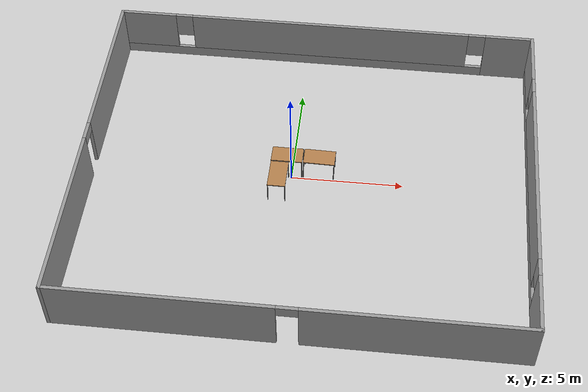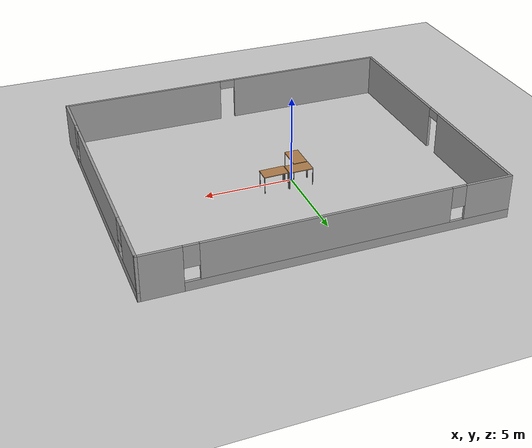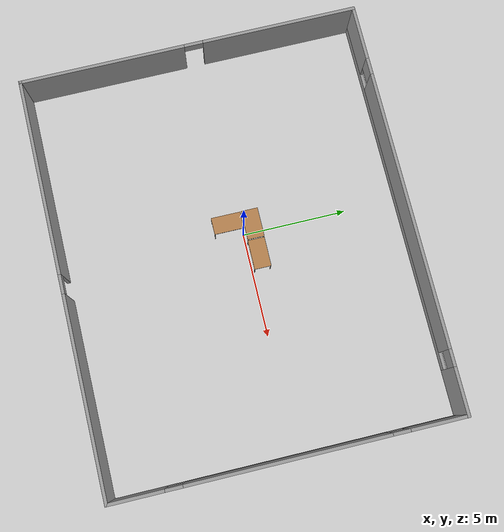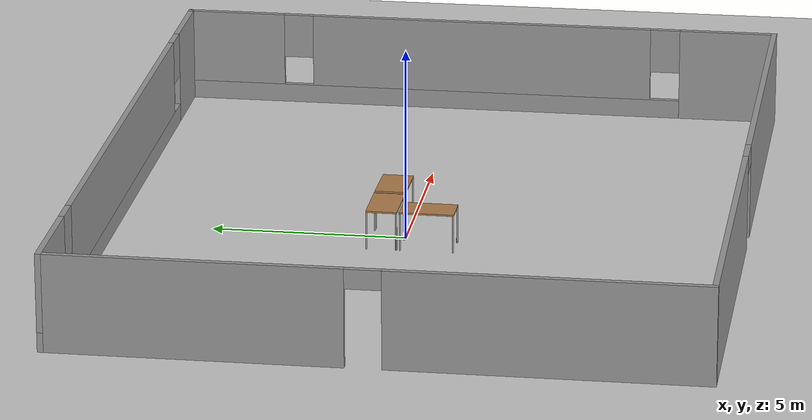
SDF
<sdf version="1.6">
 <world name="default">
  <light name="sun" type="directional">
   <pose>0 0 10 0 -0 0</pose>
   <diffuse>0.8 0.8 0.8 1</diffuse>
   <specular>0.1 0.1 0.1 1</specular>
   <attenuation>
    <range>1000</range>
    <constant>0.9</constant>
    <linear>0.01</linear>
    <quadratic>0.001</quadratic>
   </attenuation>
   <direction>-0.5 0.5 -1</direction>
  </light>
  <model name="ground_plane">
   <static>1</static>
   <link name="link">
    <collision name="collision">
     <geometry><plane><normal>0 0 1</normal><size>100 100</size></plane></geometry>
     <surface><friction><ode><mu>100</mu><mu2>50</mu2></ode></friction></surface>
    </collision>
    <visual name="visual">
     <cast_shadows>0</cast_shadows>
     <geometry><plane><normal>0 0 1</normal><size>100 100</size></plane></geometry>
     <material>
      <script><uri>file://media/materials/scripts/gazebo.material</uri><name>Gazebo/Grey</name></script>
     </material>
    </visual>
   </link>
  </model>
  <gravity>0 0 -9.8</gravity>
  <magnetic_field>6e-06 2.3e-05 -4.2e-05</magnetic_field>
  <atmosphere type="adiabatic"/>
  <physics name="default_physics" default="0" type="ode">
   <max_step_size>0.001</max_step_size>
   <real_time_factor>1</real_time_factor>
   <real_time_update_rate>1000</real_time_update_rate>
  </physics>
  <scene><ambient>0.4 0.4 0.4 1</ambient><background>0.7 0.7 0.7 1</background><shadows>1</shadows></scene>
  <spherical_coordinates>
   <surface_model>EARTH_WGS84</surface_model>
   <latitude_deg>0</latitude_deg>
   <longitude_deg>0</longitude_deg>
   <elevation>0</elevation>
   <heading_deg>0</heading_deg>
  </spherical_coordinates>
  <model name="table">
   <static>0</static>
   <link name="link">
    <collision name="surface">
     <pose>0 0 1 0 -0 0</pose>
     <geometry><box><size>1.5 0.8 0.03</size></box></geometry>
     <surface><friction><ode><mu>0.6</mu><mu2>0.6</mu2></ode></friction></surface>
    </collision>
    <visual name="visual1">
     <pose>0 0 1 0 -0 0</pose>
     <geometry><box><size>1.4 0.8 0.04</size></box></geometry>
     <material>
      <script><uri>file://media/materials/scripts/gazebo.material</uri><name>Gazebo/Wood</name></script>
     </material>
    </visual>
    <collision name="front_left_leg">
     <pose>0.68 0.38 0.5 0 -0 0</pose>
     <geometry><cylinder><radius>0.02</radius><length>1</length></cylinder></geometry>
    </collision>
    <visual name="front_left_leg">
     <pose>0.68 0.38 0.5 0 -0 0</pose>
     <geometry><cylinder><radius>0.02</radius><length>1</length></cylinder></geometry>
     <material>
      <script><uri>file://media/materials/scripts/gazebo.material</uri><name>Gazebo/Grey</name></script>
     </material>
    </visual>
    <collision name="front_right_leg">
     <pose>0.68 -0.38 0.5 0 -0 0</pose>
     <geometry><cylinder><radius>0.02</radius><length>1</length></cylinder></geometry>
    </collision>
    <visual name="front_right_leg">
     <pose>0.68 -0.38 0.5 0 -0 0</pose>
     <geometry><cylinder><radius>0.02</radius><length>1</length></cylinder></geometry>
     <material>
      <script><uri>file://media/materials/scripts/gazebo.material</uri><name>Gazebo/Grey</name></script>
     </material>
    </visual>
    <collision name="back_right_leg">
     <pose>-0.68 -0.38 0.5 0 -0 0</pose>
     <geometry><cylinder><radius>0.02</radius><length>1</length></cylinder></geometry>
    </collision>
    <visual name="back_right_leg">
     <pose>-0.68 -0.38 0.5 0 -0 0</pose>
     <geometry><cylinder><radius>0.02</radius><length>1</length></cylinder></geometry>
     <material>
      <script><uri>file://media/materials/scripts/gazebo.material</uri><name>Gazebo/Grey</name></script>
     </material>
    </visual>
    <collision name="back_left_leg">
     <pose>-0.68 0.38 0.5 0 -0 0</pose>
     <geometry><cylinder><radius>0.02</radius><length>1</length></cylinder></geometry>
    </collision>
    <visual name="back_left_leg">
     <pose>-0.68 0.38 0.5 0 -0 0</pose>
     <geometry><cylinder><radius>0.02</radius><length>1</length></cylinder></geometry>
     <material>
      <script><uri>file://media/materials/scripts/gazebo.material</uri><name>Gazebo/Grey</name></script>
     </material>
    </visual>
    <inertial>
     <inertia><ixx>1</ixx><ixy>0</ixy><ixz>0</ixz><iyy>1</iyy><iyz>0</iyz><izz>1</izz></inertia>
     <mass>1</mass>
    </inertial>
   </link>
   <pose>-0.522772 -0.649382 -7e-06 0 4e-06 -1.57713</pose>
  </model>
  <model name="table_1">
   <static>0</static>
   <link name="link">
    <collision name="surface">
     <pose>0 0 1 0 -0 0</pose>
     <geometry><box><size>1.5 0.8 0.03</size></box></geometry>
     <surface><friction><ode><mu>0.6</mu><mu2>0.6</mu2></ode></friction></surface>
    </collision>
    <visual name="visual1">
     <pose>0 0 1 0 -0 0</pose>
     <geometry><box><size>1.4 0.8 0.04</size></box></geometry>
     <material>
      <script><uri>file://media/materials/scripts/gazebo.material</uri><name>Gazebo/Wood</name></script>
     </material>
    </visual>
    <collision name="front_left_leg">
     <pose>0.68 0.38 0.5 0 -0 0</pose>
     <geometry><cylinder><radius>0.02</radius><length>1</length></cylinder></geometry>
    </collision>
    <visual name="front_left_leg">
     <pose>0.68 0.38 0.5 0 -0 0</pose>
     <geometry><cylinder><radius>0.02</radius><length>1</length></cylinder></geometry>
     <material>
      <script><uri>file://media/materials/scripts/gazebo.material</uri><name>Gazebo/Grey</name></script>
     </material>
    </visual>
    <collision name="front_right_leg">
     <pose>0.68 -0.38 0.5 0 -0 0</pose>
     <geometry><cylinder><radius>0.02</radius><length>1</length></cylinder></geometry>
    </collision>
    <visual name="front_right_leg">
     <pose>0.68 -0.38 0.5 0 -0 0</pose>
     <geometry><cylinder><radius>0.02</radius><length>1</length></cylinder></geometry>
     <material>
      <script><uri>file://media/materials/scripts/gazebo.material</uri><name>Gazebo/Grey</name></script>
     </material>
    </visual>
    <collision name="back_right_leg">
     <pose>-0.68 -0.38 0.5 0 -0 0</pose>
     <geometry><cylinder><radius>0.02</radius><length>1</length></cylinder></geometry>
    </collision>
    <visual name="back_right_leg">
     <pose>-0.68 -0.38 0.5 0 -0 0</pose>
     <geometry><cylinder><radius>0.02</radius><length>1</length></cylinder></geometry>
     <material>
      <script><uri>file://media/materials/scripts/gazebo.material</uri><name>Gazebo/Grey</name></script>
     </material>
    </visual>
    <collision name="back_left_leg">
     <pose>-0.68 0.38 0.5 0 -0 0</pose>
     <geometry><cylinder><radius>0.02</radius><length>1</length></cylinder></geometry>
    </collision>
    <visual name="back_left_leg">
     <pose>-0.68 0.38 0.5 0 -0 0</pose>
     <geometry><cylinder><radius>0.02</radius><length>1</length></cylinder></geometry>
     <material>
      <script><uri>file://media/materials/scripts/gazebo.material</uri><name>Gazebo/Grey</name></script>
     </material>
    </visual>
    <inertial>
     <inertia><ixx>1</ixx><ixy>0</ixy><ixz>0</ixz><iyy>1</iyy><iyz>0</iyz><izz>1</izz></inertia>
     <mass>1</mass>
    </inertial>
   </link>
   <pose>-0.228641 0.500106 -2e-06 -5e-06 -0 -0.004646</pose>
  </model>
  <model name="table_2">
   <static>0</static>
   <link name="link">
    <collision name="surface">
     <pose>0 0 1 0 -0 0</pose>
     <geometry><box><size>1.5 0.8 0.03</size></box></geometry>
     <surface><friction><ode><mu>0.6</mu><mu2>0.6</mu2></ode></friction></surface>
    </collision>
    <visual name="visual1">
     <pose>0 0 1 0 -0 0</pose>
     <geometry><box><size>1.4 0.8 0.04</size></box></geometry>
     <material>
      <script><uri>file://media/materials/scripts/gazebo.material</uri><name>Gazebo/Wood</name></script>
     </material>
    </visual>
    <collision name="front_left_leg">
     <pose>0.68 0.38 0.5 0 -0 0</pose>
     <geometry><cylinder><radius>0.02</radius><length>1</length></cylinder></geometry>
    </collision>
    <visual name="front_left_leg">
     <pose>0.68 0.38 0.5 0 -0 0</pose>
     <geometry><cylinder><radius>0.02</radius><length>1</length></cylinder></geometry>
     <material>
      <script><uri>file://media/materials/scripts/gazebo.material</uri><name>Gazebo/Grey</name></script>
     </material>
    </visual>
    <collision name="front_right_leg">
     <pose>0.68 -0.38 0.5 0 -0 0</pose>
     <geometry><cylinder><radius>0.02</radius><length>1</length></cylinder></geometry>
    </collision>
    <visual name="front_right_leg">
     <pose>0.68 -0.38 0.5 0 -0 0</pose>
     <geometry><cylinder><radius>0.02</radius><length>1</length></cylinder></geometry>
     <material>
      <script><uri>file://media/materials/scripts/gazebo.material</uri><name>Gazebo/Grey</name></script>
     </material>
    </visual>
    <collision name="back_right_leg">
     <pose>-0.68 -0.38 0.5 0 -0 0</pose>
     <geometry><cylinder><radius>0.02</radius><length>1</length></cylinder></geometry>
    </collision>
    <visual name="back_right_leg">
     <pose>-0.68 -0.38 0.5 0 -0 0</pose>
     <geometry><cylinder><radius>0.02</radius><length>1</length></cylinder></geometry>
     <material>
      <script><uri>file://media/materials/scripts/gazebo.material</uri><name>Gazebo/Grey</name></script>
     </material>
    </visual>
    <collision name="back_left_leg">
     <pose>-0.68 0.38 0.5 0 -0 0</pose>
     <geometry><cylinder><radius>0.02</radius><length>1</length></cylinder></geometry>
    </collision>
    <visual name="back_left_leg">
     <pose>-0.68 0.38 0.5 0 -0 0</pose>
     <geometry><cylinder><radius>0.02</radius><length>1</length></cylinder></geometry>
     <material>
      <script><uri>file://media/materials/scripts/gazebo.material</uri><name>Gazebo/Grey</name></script>
     </material>
    </visual>
    <inertial>
     <inertia><ixx>1</ixx><ixy>0</ixy><ixz>0</ixz><iyy>1</iyy><iyz>0</iyz><izz>1</izz></inertia>
     <mass>1</mass>
    </inertial>
   </link>
   <pose>1.20051 0.479194 0.015103 -1.5e-05 0.021584 -0.004644</pose>
  </model>
  <model name="zgrada">
   <pose>0.799763 -0.529069 0 0 -0 0</pose>
   <link name="Wall_10">
    <pose>0 8.05 0 0 -0 3.14159</pose>
    <visual name="Wall_10_Visual_0">
     <pose>-8.74279 0 1.25 0 -0 0</pose>
     <geometry><box><size>2.26443 0.15 2.5</size></box></geometry>
     <material>
      <script><uri>file://media/materials/scripts/gazebo.material</uri><name>Gazebo/Grey</name></script>
      <ambient>1 1 1 1</ambient>
     </material>
    </visual>
    <collision name="Wall_10_Collision_0">
     <geometry><box><size>2.26443 0.15 2.5</size></box></geometry>
     <pose>-8.74279 0 1.25 0 -0 0</pose>
    </collision>
    <visual name="Wall_10_Visual_1">
     <pose>1.13221 0 0.25 0 -0 0</pose>
     <geometry><box><size>17.4856 0.15 0.5</size></box></geometry>
     <material>
      <script><uri>file://media/materials/scripts/gazebo.material</uri><name>Gazebo/Grey</name></script>
      <ambient>1 1 1 1</ambient>
     </material>
    </visual>
    <collision name="Wall_10_Collision_1">
     <geometry><box><size>17.4856 0.15 0.5</size></box></geometry>
     <pose>1.13221 0 0.25 0 -0 0</pose>
    </collision>
    <visual name="Wall_10_Visual_2">
     <pose>-0.207067 0 1.5 0 -0 0</pose>
     <geometry><box><size>13.207 0.15 2</size></box></geometry>
     <material>
      <script><uri>file://media/materials/scripts/gazebo.material</uri><name>Gazebo/Grey</name></script>
      <ambient>1 1 1 1</ambient>
     </material>
    </visual>
    <collision name="Wall_10_Collision_2">
     <geometry><box><size>13.207 0.15 2</size></box></geometry>
     <pose>-0.207067 0 1.5 0 -0 0</pose>
    </collision>
    <visual name="Wall_10_Visual_3">
     <pose>8.53572 0 1.5 0 -0 0</pose>
     <geometry><box><size>2.67856 0.15 2</size></box></geometry>
     <material>
      <script><uri>file://media/materials/scripts/gazebo.material</uri><name>Gazebo/Grey</name></script>
      <ambient>1 1 1 1</ambient>
     </material>
    </visual>
    <collision name="Wall_10_Collision_3">
     <geometry><box><size>2.67856 0.15 2</size></box></geometry>
     <pose>8.53572 0 1.5 0 -0 0</pose>
    </collision>
    <visual name="Wall_10_Visual_4">
     <pose>-7.21057 0 1.9 0 -0 0</pose>
     <geometry><box><size>0.8 0.15 1.2</size></box></geometry>
     <material>
      <script><uri>file://media/materials/scripts/gazebo.material</uri><name>Gazebo/Grey</name></script>
      <ambient>1 1 1 1</ambient>
     </material>
    </visual>
    <collision name="Wall_10_Collision_4">
     <geometry><box><size>0.8 0.15 1.2</size></box></geometry>
     <pose>-7.21057 0 1.9 0 -0 0</pose>
    </collision>
    <visual name="Wall_10_Visual_5">
     <pose>6.79644 0 1.9 0 -0 0</pose>
     <geometry><box><size>0.8 0.15 1.2</size></box></geometry>
     <material>
      <script><uri>file://media/materials/scripts/gazebo.material</uri><name>Gazebo/Grey</name></script>
      <ambient>1 1 1 1</ambient>
     </material>
    </visual>
    <collision name="Wall_10_Collision_5">
     <geometry><box><size>0.8 0.15 1.2</size></box></geometry>
     <pose>6.79644 0 1.9 0 -0 0</pose>
    </collision>
   </link>
   <link name="Wall_6">
    <pose>-9.8 0 0 0 0 -1.5708</pose>
    <visual name="Wall_6_Visual_0">
     <pose>-4.41526 0 1.25 0 -0 0</pose>
     <geometry><box><size>7.41947 0.15 2.5</size></box></geometry>
     <material>
      <script><uri>file://media/materials/scripts/gazebo.material</uri><name>Gazebo/Grey</name></script>
      <ambient>1 1 1 1</ambient>
     </material>
    </visual>
    <collision name="Wall_6_Collision_0">
     <geometry><box><size>7.41947 0.15 2.5</size></box></geometry>
     <pose>-4.41526 0 1.25 0 -0 0</pose>
    </collision>
    <visual name="Wall_6_Visual_1">
     <pose>4.15974 0 1.25 0 -0 0</pose>
     <geometry><box><size>7.93053 0.15 2.5</size></box></geometry>
     <material>
      <script><uri>file://media/materials/scripts/gazebo.material</uri><name>Gazebo/Grey</name></script>
      <ambient>1 1 1 1</ambient>
     </material>
    </visual>
    <collision name="Wall_6_Collision_1">
     <geometry><box><size>7.93053 0.15 2.5</size></box></geometry>
     <pose>4.15974 0 1.25 0 -0 0</pose>
    </collision>
    <visual name="Wall_6_Visual_2">
     <pose>-0.255526 0 2.25 0 -0 0</pose>
     <geometry><box><size>0.9 0.15 0.5</size></box></geometry>
     <material>
      <script><uri>file://media/materials/scripts/gazebo.material</uri><name>Gazebo/Grey</name></script>
      <ambient>1 1 1 1</ambient>
     </material>
    </visual>
    <collision name="Wall_6_Collision_2">
     <geometry><box><size>0.9 0.15 0.5</size></box></geometry>
     <pose>-0.255526 0 2.25 0 -0 0</pose>
    </collision>
   </link>
   <link name="Wall_8">
    <pose>0 -8.05 0 0 -0 0</pose>
    <visual name="Wall_8_Visual_0">
     <pose>-5.16119 0 1.25 0 -0 0</pose>
     <geometry><box><size>9.42761 0.15 2.5</size></box></geometry>
     <material>
      <script><uri>file://media/materials/scripts/gazebo.material</uri><name>Gazebo/Grey</name></script>
      <ambient>1 1 1 1</ambient>
     </material>
    </visual>
    <collision name="Wall_8_Collision_0">
     <geometry><box><size>9.42761 0.15 2.5</size></box></geometry>
     <pose>-5.16119 0 1.25 0 -0 0</pose>
    </collision>
    <visual name="Wall_8_Visual_1">
     <pose>5.16381 0 1.25 0 -0 0</pose>
     <geometry><box><size>9.42239 0.15 2.5</size></box></geometry>
     <material>
      <script><uri>file://media/materials/scripts/gazebo.material</uri><name>Gazebo/Grey</name></script>
      <ambient>1 1 1 1</ambient>
     </material>
    </visual>
    <collision name="Wall_8_Collision_1">
     <geometry><box><size>9.42239 0.15 2.5</size></box></geometry>
     <pose>5.16381 0 1.25 0 -0 0</pose>
    </collision>
    <visual name="Wall_8_Visual_2">
     <pose>0.002613 0 2.25 0 -0 0</pose>
     <geometry><box><size>0.9 0.15 0.5</size></box></geometry>
     <material>
      <script><uri>file://media/materials/scripts/gazebo.material</uri><name>Gazebo/Grey</name></script>
      <ambient>1 1 1 1</ambient>
     </material>
    </visual>
    <collision name="Wall_8_Collision_2">
     <geometry><box><size>0.9 0.15 0.5</size></box></geometry>
     <pose>0.002613 0 2.25 0 -0 0</pose>
    </collision>
   </link>
   <link name="Wall_9">
    <pose>9.8 0 0 0 -0 1.5708</pose>
    <visual name="Wall_9_Visual_0">
     <pose>-6.80837 0 1.25 0 -0 0</pose>
     <geometry><box><size>2.63325 0.15 2.5</size></box></geometry>
     <material>
      <script><uri>file://media/materials/scripts/gazebo.material</uri><name>Gazebo/Grey</name></script>
      <ambient>1 1 1 1</ambient>
     </material>
    </visual>
    <collision name="Wall_9_Collision_0">
     <geometry><box><size>2.63325 0.15 2.5</size></box></geometry>
     <pose>-6.80837 0 1.25 0 -0 0</pose>
    </collision>
    <visual name="Wall_9_Visual_1">
     <pose>1.31663 0 0.25 0 -0 0</pose>
     <geometry><box><size>13.6167 0.15 0.5</size></box></geometry>
     <material>
      <script><uri>file://media/materials/scripts/gazebo.material</uri><name>Gazebo/Grey</name></script>
      <ambient>1 1 1 1</ambient>
     </material>
    </visual>
    <collision name="Wall_9_Collision_1">
     <geometry><box><size>13.6167 0.15 0.5</size></box></geometry>
     <pose>1.31663 0 0.25 0 -0 0</pose>
    </collision>
    <visual name="Wall_9_Visual_2">
     <pose>-0.0284 0 1.5 0 -0 0</pose>
     <geometry><box><size>9.32669 0.15 2</size></box></geometry>
     <material>
      <script><uri>file://media/materials/scripts/gazebo.material</uri><name>Gazebo/Grey</name></script>
      <ambient>1 1 1 1</ambient>
     </material>
    </visual>
    <collision name="Wall_9_Collision_2">
     <geometry><box><size>9.32669 0.15 2</size></box></geometry>
     <pose>-0.0284 0 1.5 0 -0 0</pose>
    </collision>
    <visual name="Wall_9_Visual_3">
     <pose>6.77997 0 1.5 0 -0 0</pose>
     <geometry><box><size>2.69005 0.15 2</size></box></geometry>
     <material>
      <script><uri>file://media/materials/scripts/gazebo.material</uri><name>Gazebo/Grey</name></script>
      <ambient>1 1 1 1</ambient>
     </material>
    </visual>
    <collision name="Wall_9_Collision_3">
     <geometry><box><size>2.69005 0.15 2</size></box></geometry>
     <pose>6.77997 0 1.5 0 -0 0</pose>
    </collision>
    <visual name="Wall_9_Visual_4">
     <pose>-5.09175 0 1.9 0 -0 0</pose>
     <geometry><box><size>0.8 0.15 1.2</size></box></geometry>
     <material>
      <script><uri>file://media/materials/scripts/gazebo.material</uri><name>Gazebo/Grey</name></script>
      <ambient>1 1 1 1</ambient>
     </material>
    </visual>
    <collision name="Wall_9_Collision_4">
     <geometry><box><size>0.8 0.15 1.2</size></box></geometry>
     <pose>-5.09175 0 1.9 0 -0 0</pose>
    </collision>
    <visual name="Wall_9_Visual_5">
     <pose>5.03495 0 1.9 0 -0 0</pose>
     <geometry><box><size>0.8 0.15 1.2</size></box></geometry>
     <material>
      <script><uri>file://media/materials/scripts/gazebo.material</uri><name>Gazebo/Grey</name></script>
      <ambient>1 1 1 1</ambient>
     </material>
    </visual>
    <collision name="Wall_9_Collision_5">
     <geometry><box><size>0.8 0.15 1.2</size></box></geometry>
     <pose>5.03495 0 1.9 0 -0 0</pose>
    </collision>
   </link>
   <static>1</static>
  </model>
 </world>
</sdf>
